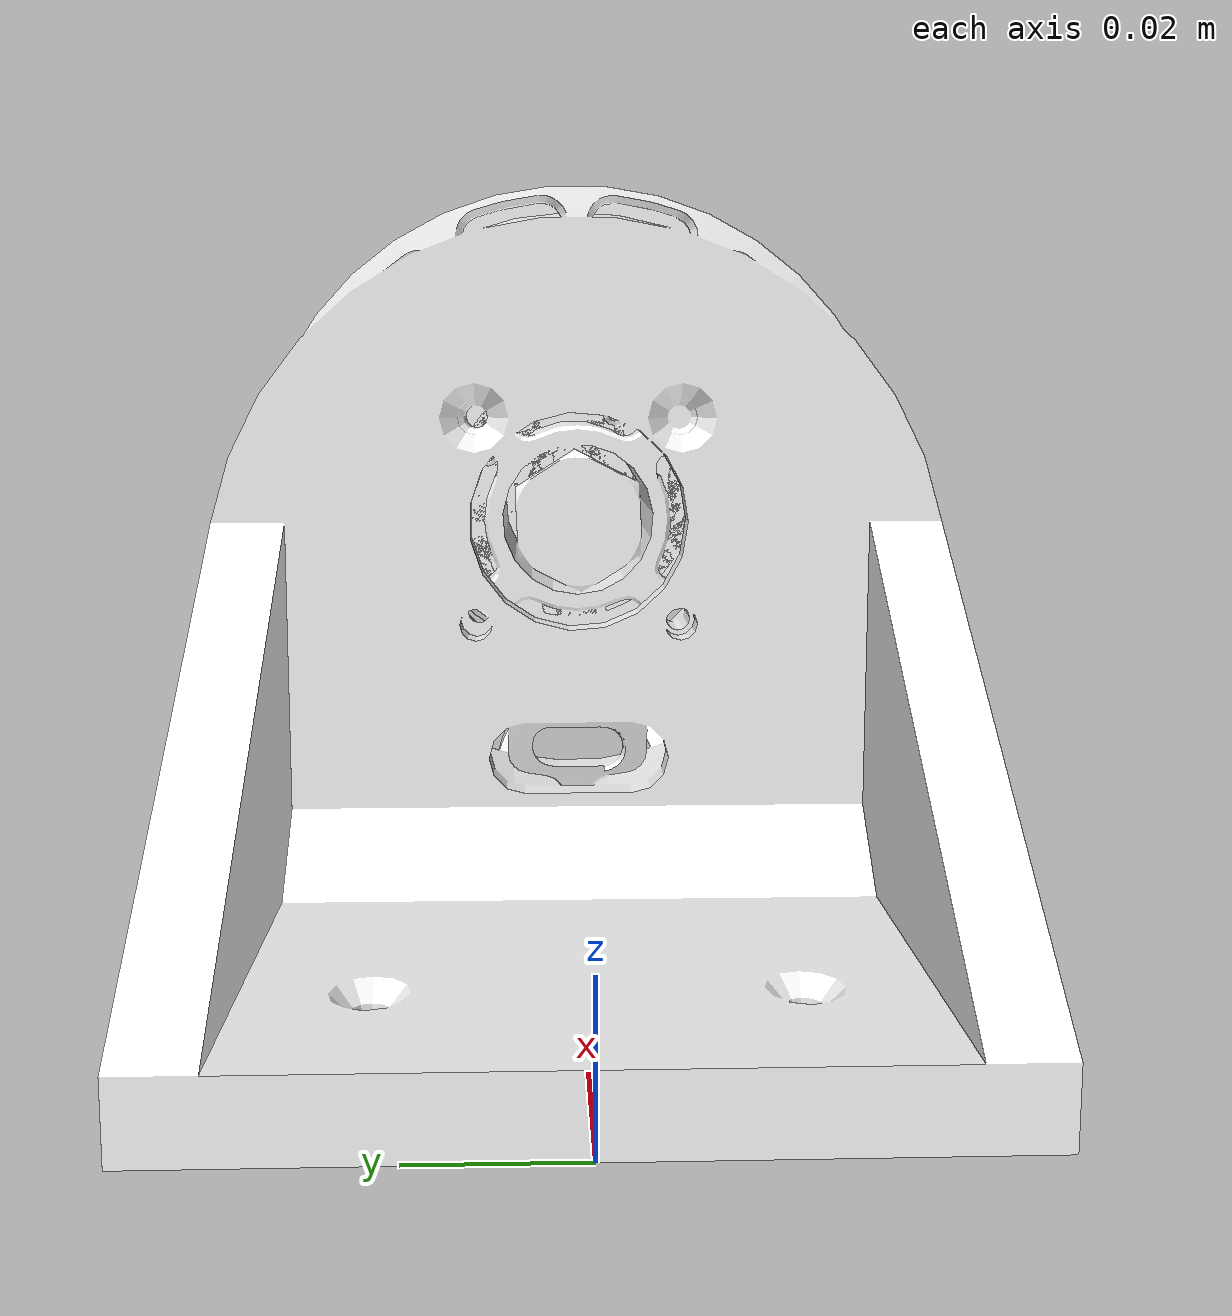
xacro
<?xml version="1.0"?>
<robot name="simple_motor" xmlns:xacro="http://ros.org/wiki/xacro">

  <material name="white">
    <color rgba="1.0 1.0 1.0 1.0"/>
  </material>

  <link name="world"/>
  <joint name="fixed" type="fixed">
    <parent link="world"/>
    <child link="motor"/>
  </joint>

  <link name="motor">
    <visual>
      <geometry>
        <mesh filename="package://motor_description/meshes/motor.STL" />
      </geometry>
      <origin xyz="0 0 0" rpy="0 0 0"/>
      <material name="white"/>
    </visual>
  </link>

  <joint name="joint1" type="continuous">
    <origin xyz="0.104 0 0.06" rpy="0 0 0"/>
    <axis xyz="1 0 0"/>
    <parent link="motor"/>
    <child link="shaft"/>
  </joint>

  <link name="shaft">
    <visual>
      <geometry>
        <mesh filename="package://motor_description/meshes/shaft.STL" />
      </geometry>
      <origin xyz="-0.104 0 -0.06" rpy="0 0 0"/>
      <material name="white"/>
    </visual>
  </link>

</robot>
